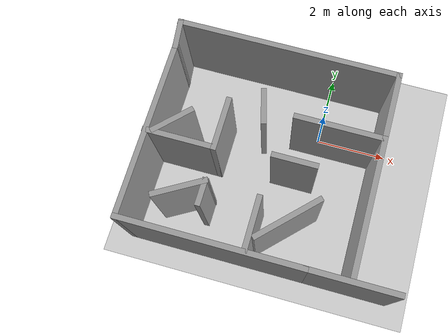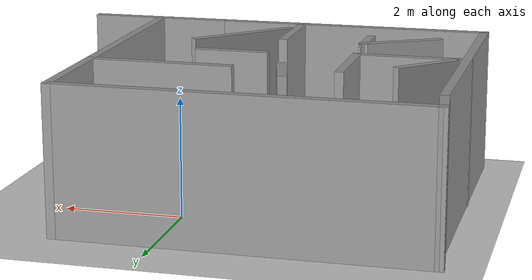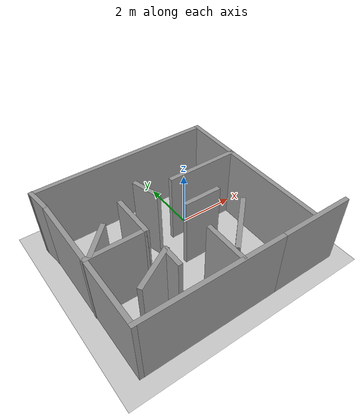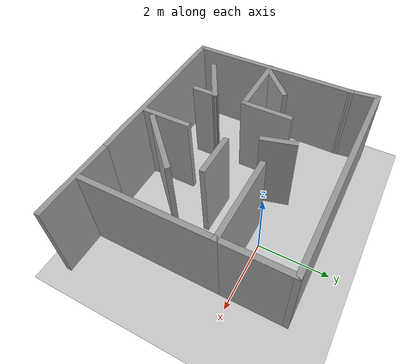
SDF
<sdf version="1.7">
 <world name="default">
  <light name="sun" type="directional">
   <pose>0 0 10 0 -0 0</pose>
   <diffuse>0.8 0.8 0.8 1</diffuse>
   <specular>0.2 0.2 0.2 1</specular>
   <attenuation>
    <range>1000</range>
    <constant>0.9</constant>
    <linear>0.01</linear>
    <quadratic>0.001</quadratic>
   </attenuation>
   <direction>-0.5 0.1 -0.9</direction>
   <spot><inner_angle>0</inner_angle><outer_angle>0</outer_angle><falloff>0</falloff></spot>
  </light>
  <model name="ground_plane">
   <static>1</static>
   <link name="link">
    <collision name="collision">
     <geometry><plane><normal>0 0 1</normal><size>100 100</size></plane></geometry>
     <surface><friction><ode><mu>100</mu><mu2>50</mu2></ode></friction></surface>
    </collision>
    <visual name="visual">
     <cast_shadows>0</cast_shadows>
     <geometry><plane><normal>0 0 1</normal><size>100 100</size></plane></geometry>
     <material>
      <script><uri>file://media/materials/scripts/gazebo.material</uri><name>Gazebo/Grey</name></script>
     </material>
    </visual>
   </link>
  </model>
  <gravity>0 0 -9.8</gravity>
  <magnetic_field>6e-06 2.3e-05 -4.2e-05</magnetic_field>
  <atmosphere type="adiabatic"/>
  <physics type="ode">
   <max_step_size>0.001</max_step_size>
   <real_time_factor>1</real_time_factor>
   <real_time_update_rate>1000</real_time_update_rate>
  </physics>
  <scene><ambient>0.4 0.4 0.4 1</ambient><background>0.7 0.7 0.7 1</background><shadows>1</shadows></scene>
  <audio><device>default</device></audio>
  <spherical_coordinates>
   <surface_model>EARTH_WGS84</surface_model>
   <latitude_deg>0</latitude_deg>
   <longitude_deg>0</longitude_deg>
   <elevation>0</elevation>
   <heading_deg>0</heading_deg>
  </spherical_coordinates>
  <model name="Untitled3">
   <pose>-0.80618 -1.3059 0 0 -0 0</pose>
   <link name="Wall_10">
    <collision name="Wall_10_Collision">
     <geometry><box><size>1.5 0.15 2.5</size></box></geometry>
     <pose>0 0 1.25 0 -0 0</pose>
    </collision>
    <visual name="Wall_10_Visual">
     <pose>0 0 1.25 0 -0 0</pose>
     <geometry><box><size>1.5 0.15 2.5</size></box></geometry>
     <material>
      <script><uri>file://media/materials/scripts/gazebo.material</uri><name>Gazebo/Grey</name></script>
      <ambient>1 1 1 1</ambient>
     </material>
     <meta><layer>0</layer></meta>
    </visual>
    <pose>-1.71575 0.235747 0 0 -0 1.5708</pose>
   </link>
   <link name="Wall_12">
    <collision name="Wall_12_Collision">
     <geometry><box><size>2.5 0.15 2.5</size></box></geometry>
     <pose>0 0 1.25 0 -0 0</pose>
    </collision>
    <visual name="Wall_12_Visual">
     <pose>0 0 1.25 0 -0 0</pose>
     <geometry><box><size>2.5 0.15 2.5</size></box></geometry>
     <material>
      <script><uri>file://media/materials/scripts/gazebo.material</uri><name>Gazebo/Grey</name></script>
      <ambient>1 1 1 1</ambient>
     </material>
     <meta><layer>0</layer></meta>
    </visual>
    <pose>1.28425 0.940747 0 0 -0 0</pose>
   </link>
   <link name="Wall_13">
    <collision name="Wall_13_Collision">
     <geometry><box><size>2 0.15 2.5</size></box></geometry>
     <pose>0 0 1.25 0 -0 0</pose>
    </collision>
    <visual name="Wall_13_Visual">
     <pose>0 0 1.25 0 -0 0</pose>
     <geometry><box><size>2 0.15 2.5</size></box></geometry>
     <material>
      <script><uri>file://media/materials/scripts/gazebo.material</uri><name>Gazebo/Grey</name></script>
      <ambient>1 1 1 1</ambient>
     </material>
     <meta><layer>0</layer></meta>
    </visual>
    <pose>2.45925 1.86575 0 0 -0 1.5708</pose>
   </link>
   <link name="Wall_14">
    <collision name="Wall_14_Collision">
     <geometry><box><size>6.25 0.15 2.5</size></box></geometry>
     <pose>0 0 1.25 0 -0 0</pose>
    </collision>
    <visual name="Wall_14_Visual">
     <pose>0 0 1.25 0 -0 0</pose>
     <geometry><box><size>6.25 0.15 2.5</size></box></geometry>
     <material>
      <script><uri>file://media/materials/scripts/gazebo.material</uri><name>Gazebo/Grey</name></script>
      <ambient>1 1 1 1</ambient>
     </material>
     <meta><layer>0</layer></meta>
    </visual>
    <pose>-0.590747 2.79075 0 0 -0 3.14159</pose>
   </link>
   <link name="Wall_15">
    <collision name="Wall_15_Collision">
     <geometry><box><size>0.895453 0.15 2.5</size></box></geometry>
     <pose>0 0 1.25 0 -0 0</pose>
    </collision>
    <visual name="Wall_15_Visual">
     <pose>0 0 1.25 0 -0 0</pose>
     <geometry><box><size>0.895453 0.15 2.5</size></box></geometry>
     <material>
      <script><uri>file://media/materials/scripts/gazebo.material</uri><name>Gazebo/Grey</name></script>
      <ambient>1 1 1 1</ambient>
     </material>
     <meta><layer>0</layer></meta>
    </visual>
    <pose>-3.59575 2.42075 0 0 -0 -1.44977</pose>
   </link>
   <link name="Wall_17">
    <collision name="Wall_17_Collision">
     <geometry><box><size>5 0.15 2.5</size></box></geometry>
     <pose>0 0 1.25 0 -0 0</pose>
    </collision>
    <visual name="Wall_17_Visual">
     <pose>0 0 1.25 0 -0 0</pose>
     <geometry><box><size>5 0.15 2.5</size></box></geometry>
     <material>
      <script><uri>file://media/materials/scripts/gazebo.material</uri><name>Gazebo/Grey</name></script>
      <ambient>1 1 1 1</ambient>
     </material>
     <meta><layer>0</layer></meta>
    </visual>
    <pose>-1.12575 -2.79925 0 0 -0 0</pose>
   </link>
   <link name="Wall_19">
    <collision name="Wall_19_Collision">
     <geometry><box><size>1.5 0.15 2.5</size></box></geometry>
     <pose>0 0 1.25 0 -0 0</pose>
    </collision>
    <visual name="Wall_19_Visual">
     <pose>0 0 1.25 0 -0 0</pose>
     <geometry><box><size>1.5 0.15 2.5</size></box></geometry>
     <material>
      <script><uri>file://media/materials/scripts/gazebo.material</uri><name>Gazebo/Grey</name></script>
      <ambient>1 1 1 1</ambient>
     </material>
     <meta><layer>0</layer></meta>
    </visual>
    <pose>-0.235747 -2.07425 0 0 -0 1.5708</pose>
   </link>
   <link name="Wall_21">
    <collision name="Wall_21_Collision">
     <geometry><box><size>2.5 0.15 2.5</size></box></geometry>
     <pose>0 0 1.25 0 -0 0</pose>
    </collision>
    <visual name="Wall_21_Visual">
     <pose>0 0 1.25 0 -0 0</pose>
     <geometry><box><size>2.5 0.15 2.5</size></box></geometry>
     <material>
      <script><uri>file://media/materials/scripts/gazebo.material</uri><name>Gazebo/Grey</name></script>
      <ambient>1 1 1 1</ambient>
     </material>
     <meta><layer>0</layer></meta>
    </visual>
    <pose>2.47425 -2.79925 0 0 -0 0</pose>
   </link>
   <link name="Wall_23">
    <collision name="Wall_23_Collision">
     <geometry><box><size>3.75 0.15 2.5</size></box></geometry>
     <pose>0 0 1.25 0 -0 0</pose>
    </collision>
    <visual name="Wall_23_Visual">
     <pose>0 0 1.25 0 -0 0</pose>
     <geometry><box><size>3.75 0.15 2.5</size></box></geometry>
     <material>
      <script><uri>file://media/materials/scripts/gazebo.material</uri><name>Gazebo/Grey</name></script>
      <ambient>1 1 1 1</ambient>
     </material>
     <meta><layer>0</layer></meta>
    </visual>
    <pose>2.45925 -0.859253 0 0 -0 -1.5708</pose>
   </link>
   <link name="Wall_25">
    <collision name="Wall_25_Collision">
     <geometry><box><size>1.25 0.15 2.5</size></box></geometry>
     <pose>0 0 1.25 0 -0 0</pose>
    </collision>
    <visual name="Wall_25_Visual">
     <pose>0 0 1.25 0 -0 0</pose>
     <geometry><box><size>1.25 0.15 2.5</size></box></geometry>
     <material>
      <script><uri>file://media/materials/scripts/gazebo.material</uri><name>Gazebo/Grey</name></script>
      <ambient>1 1 1 1</ambient>
     </material>
     <meta><layer>0</layer></meta>
    </visual>
    <pose>0.374253 -0.229253 0 0 -0 0</pose>
   </link>
   <link name="Wall_5">
    <collision name="Wall_5_Collision">
     <geometry><box><size>5 0.15 2.5</size></box></geometry>
     <pose>0 0 1.25 0 -0 0</pose>
    </collision>
    <visual name="Wall_5_Visual">
     <pose>0 0 1.25 0 -0 0</pose>
     <geometry><box><size>5 0.15 2.5</size></box></geometry>
     <material>
      <script><uri>file://media/materials/scripts/gazebo.material</uri><name>Gazebo/Grey</name></script>
      <ambient>1 1 1 1</ambient>
     </material>
     <meta><layer>0</layer></meta>
    </visual>
    <pose>-3.55075 -0.374253 0 0 -0 -1.5708</pose>
   </link>
   <link name="Wall_7">
    <collision name="Wall_7_Collision">
     <geometry><box><size>2 0.15 2.5</size></box></geometry>
     <pose>0 0 1.25 0 -0 0</pose>
    </collision>
    <visual name="Wall_7_Visual">
     <pose>0 0 1.25 0 -0 0</pose>
     <geometry><box><size>2 0.15 2.5</size></box></geometry>
     <material>
      <script><uri>file://media/materials/scripts/gazebo.material</uri><name>Gazebo/Grey</name></script>
      <ambient>1 1 1 1</ambient>
     </material>
     <meta><layer>0</layer></meta>
    </visual>
    <pose>-2.64075 -0.439253 0 0 -0 0</pose>
   </link>
   <static>1</static>
  </model>
  <model name="Untitled">
   <pose>-1.86983 -1.79159 0 0 -0 0</pose>
   <link name="Wall_10">
    <collision name="Wall_10_Collision">
     <geometry><box><size>0.75 0.15 2.5</size></box></geometry>
     <pose>0 0 1.25 0 -0 0</pose>
    </collision>
    <visual name="Wall_10_Visual">
     <pose>0 0 1.25 0 -0 0</pose>
     <geometry><box><size>0.75 0.15 2.5</size></box></geometry>
     <material>
      <script><uri>file://media/materials/scripts/gazebo.material</uri><name>Gazebo/Grey</name></script>
      <ambient>1 1 1 1</ambient>
     </material>
     <meta><layer>0</layer></meta>
    </visual>
    <pose>-0.601031 -1.15341 0 0 -0 -1.5708</pose>
   </link>
   <link name="Wall_12">
    <collision name="Wall_12_Collision">
     <geometry><box><size>1.25 0.15 2.5</size></box></geometry>
     <pose>0 0 1.25 0 -0 0</pose>
    </collision>
    <visual name="Wall_12_Visual">
     <pose>0 0 1.25 0 -0 0</pose>
     <geometry><box><size>1.25 0.15 2.5</size></box></geometry>
     <material>
      <script><uri>file://media/materials/scripts/gazebo.material</uri><name>Gazebo/Grey</name></script>
      <ambient>1 1 1 1</ambient>
     </material>
     <meta><layer>0</layer></meta>
    </visual>
    <pose>-1.90907 0.482678 0 0 -0 -2.35619</pose>
   </link>
   <link name="Wall_14">
    <collision name="Wall_14_Collision">
     <geometry><box><size>1 0.15 2.5</size></box></geometry>
     <pose>0 0 1.25 0 -0 0</pose>
    </collision>
    <visual name="Wall_14_Visual">
     <pose>0 0 1.25 0 -0 0</pose>
     <geometry><box><size>1 0.15 2.5</size></box></geometry>
     <material>
      <script><uri>file://media/materials/scripts/gazebo.material</uri><name>Gazebo/Grey</name></script>
      <ambient>1 1 1 1</ambient>
     </material>
     <meta><layer>0</layer></meta>
    </visual>
    <pose>0.279837 1.48211 0 0 -0 1.8326</pose>
   </link>
   <link name="Wall_7">
    <collision name="Wall_7_Collision">
     <geometry><box><size>2 0.15 2.5</size></box></geometry>
     <pose>0 0 1.25 0 -0 0</pose>
    </collision>
    <visual name="Wall_7_Visual">
     <pose>0 0 1.25 0 -0 0</pose>
     <geometry><box><size>2 0.15 2.5</size></box></geometry>
     <material>
      <script><uri>file://media/materials/scripts/gazebo.material</uri><name>Gazebo/Grey</name></script>
      <ambient>1 1 1 1</ambient>
     </material>
     <meta><layer>0</layer></meta>
    </visual>
    <pose>1.64391 -1.22434 0 0 -0 0.785398</pose>
   </link>
   <link name="Wall_9">
    <collision name="Wall_9_Collision">
     <geometry><box><size>1.5 0.15 2.5</size></box></geometry>
     <pose>0 0 1.25 0 -0 0</pose>
    </collision>
    <visual name="Wall_9_Visual">
     <pose>0 0 1.25 0 -0 0</pose>
     <geometry><box><size>1.5 0.15 2.5</size></box></geometry>
     <material>
      <script><uri>file://media/materials/scripts/gazebo.material</uri><name>Gazebo/Grey</name></script>
      <ambient>1 1 1 1</ambient>
     </material>
     <meta><layer>0</layer></meta>
    </visual>
    <pose>-1.1856 -1.19091 0 0 -0 0.523599</pose>
   </link>
   <static>1</static>
  </model>
 </world>
</sdf>
